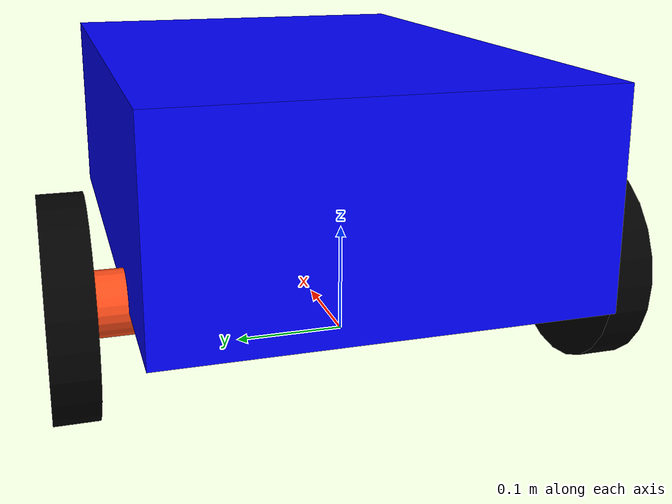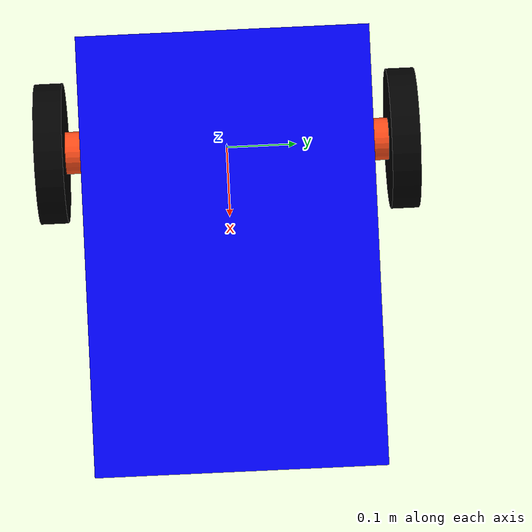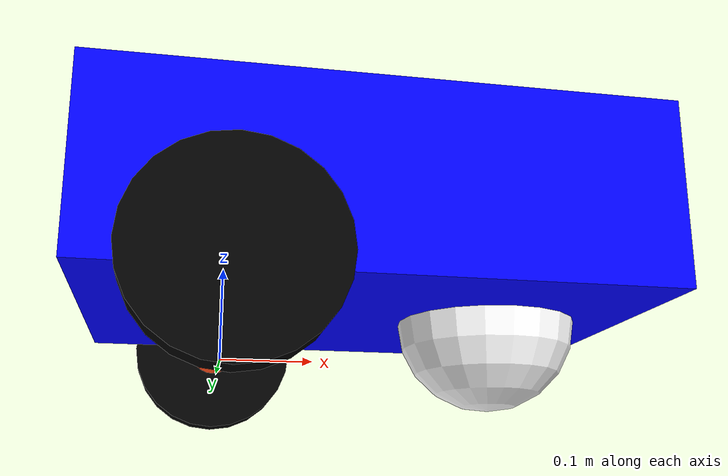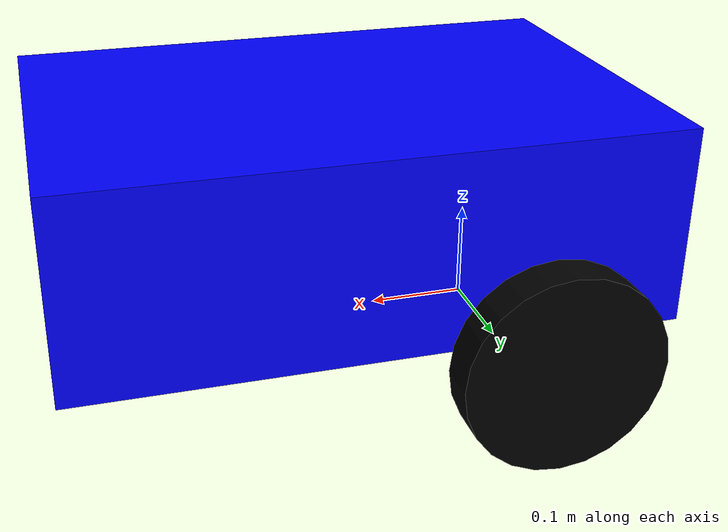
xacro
<?xml version="1.0"?>

<robot xmlns:xacro="http://www.ros.org/wiki/xacro">
    <xacro:include filename="material.xacro"/>

<!-- base link -->

    <link name="base_link"/>

<!-- chassis link -->

    <link name="chassis">
        <inertial>
            <origin xyz="0.35 0.0 0.0" rpy="0.0 0.0 0.0"/>
            <mass value="9.0"/>
            <inertia ixx="0.1" ixy="0.0" ixz="0.0" iyy="0.1" iyz="0.0" izz="0.1"/>
        </inertial>
        <visual name="">
            <origin xyz="0.25 0.0 0.1" rpy="0.0 0.0 0.0"/>
            <geometry>
                <box size="0.6 0.4 0.2"/>
            </geometry>
            <material name="blue"/>
        </visual>
        <collision>
            <origin xyz="0.25 0.0 0.1" rpy="0.0 0.0 0.0"/>
            <geometry>
                <box size="0.6 0.4 0.2"/>
            </geometry>
        </collision>
    </link>

    <joint name="base_link_to_chassis" type="fixed">
        <origin xyz="-0.1 0.0 0.05" rpy="0.0 0.0 0.0"/>
        <parent link="base_link"/>
        <child link="chassis"/>

    </joint>
<!-- shaft link -->

    <link name="shaft">
        <inertial>
            <origin xyz="-.01 0.0 0.0" rpy="0.0 0.0 0.0"/>
            <mass value="0.5"/>
            <inertia ixx="0.1" ixy="0.0" ixz="0.0" iyy="0.1" iyz="0.0" izz="0.1"/>
        </inertial>

        <visual name="">
            <origin xyz="-0.0 0.0 0.0" rpy="1.57 0.0 0.0"/>
            <geometry>
                <cylinder radius="0.03" length="0.5"/>
            </geometry>
            <material name="orange"/>
        </visual>
        <collision>
            <origin xyz="-0.1 0.0 0.0" rpy="1.57 0.0 0.0"/>
            <geometry>
                <cylinder radius="0.03" length="0.5"/>
            </geometry>
        </collision>
    </link>
<!-- joint chassis to shaft -->
    <joint name="base_link_to_shaft" type="fixed">
        <parent link="base_link"/>
        <child link="shaft"/>
        <origin xyz="0.0 0.0 0.05"/>
    </joint>
<!-- right wheel link -->
    <link name="right_wheel">

        <inertial>
            <origin xyz="0.0 0.0 0.0" rpy="0.0 0.0 0.0"/>
            <mass value="5"/>
            <inertia ixx="0.1" ixy="0.0" ixz="0.0" iyy="0.1" iyz="0.0" izz="0.1"/>
        </inertial>
        <visual name="">
            <geometry>
                <cylinder radius="0.1" length="0.04"/>
            </geometry>
            <material name="black"/>
        </visual>
        <collision>

            <geometry>
                <cylinder radius="0.1" length="0.04"/>
            </geometry>
        </collision>
    </link>

<!-- joint shaft with right wheel -->
    <joint name="base_link_to_right_wheel" type="continuous">
        <origin xyz="0.0 -0.25 0.05" rpy="1.57 0.0 0.0"/>
        <parent link="base_link"/>
        <child link="right_wheel"/>
        <axis xyz="0.0 0.0 -1"/>
        <limit effort="10000" velocity="1000"/>
        <joint_properties damping="1.0" friction="1.0"/>    </joint>
<!-- lift wheel -->
    <link name="left_wheel">

        <inertial>
            <origin xyz="0.0 0.0 0.0" rpy="0.0 0.0 0.0"/>
            <mass value="5"/>
            <inertia ixx="0.1" ixy="0.0" ixz="0.0" iyy="0.1" iyz="0.0" izz="0.1"/>
        </inertial>
        <visual name="">

            <geometry>
                <cylinder radius="0.1" length="0.04"/>
            </geometry>
            <material name="black"/>
        </visual>
        <collision>

            <geometry>
                <cylinder radius="0.1" length="0.04"/>
            </geometry>
        </collision>
    </link>
<!-- joint shaft with right wheel -->
    <joint name="base_link_to_left_wheel" type="continuous">
        <origin xyz="0.0 0.25 0.05" rpy="-1.57 0.0 0.0"/>
        <parent link="base_link"/>
        <child link="left_wheel"/>
        <axis xyz="0.0 0.0 1"/>
        <limit effort="10000" velocity="1000"/>
        <joint_properties damping="1.0" friction="1.0"/>
    </joint>

    <link name="caster_wheel">
        <inertial>
            <origin xyz="0.0 0.0 0.0" rpy="0.0 0.0 0.0"/>
            <mass value="0.0"/>
            <inertia ixx="0.0" ixy="0.0" ixz="0.0" iyy="0.0" iyz="0.0" izz="0.0"/>
        </inertial>
        <visual >
            <origin xyz="0.0 0.0 0.0" rpy="0.0 0.0 0.0"/>
            <geometry>
                <sphere radius="0.1"/>
            </geometry>
            <surface>
                <friction>
                    <ode>
                        <mu>0.0</mu>
                        <mu2>0.0</mu2>
                        <fdir1>0.0 0.0 0.0</fdir1>
                        <slip1>1.0</slip1>
                        <slip2>1.0</slip2>
                    </ode>
                </friction>
            </surface>
            <material name = "white_lin">
                <color rgba="1.0 1.0 1.0 1.0"/>
            </material>

        </visual>
        <collision>
            <origin xyz="0.0 0.0 0.0" rpy="0.0 0.0 0.0"/>
            <geometry>
                <sphere radius="0.1"/>
            </geometry>

        </collision>
    </link>
<!-- joint caster wheel with base linkk -->
    <joint name="base_link_to_custer_wheel" type= "fixed">
        <origin xyz="0.3 0.0 0.05" rpy="0.0 0.0 0.0"/>
        <parent link="base_link"/>
        <child link="caster_wheel"/>
        <axis xyz="0.0 0.0 0.0"/>
        <limit lower="0.0" upper="0.0" effort="0.0" velocity="0.0"/>
    </joint>

</robot>

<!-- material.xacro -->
<robot xmlns:xacro="http://www.ros.org/wiki/xacro">

    <material name="orange">
        <color rgba="1 0.3 0.1 1"/>
    </material>

    <material name="blue">
        <color rgba="0 0 1 1"/>
    </material>

    <material name="black">
        <color rgba="0 0 0 1"/>
    </material>

</robot>
